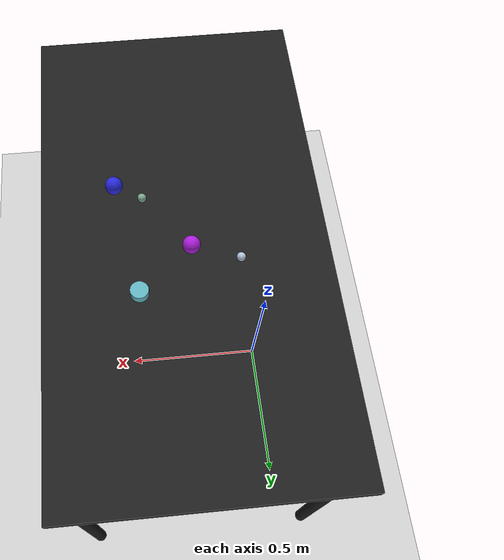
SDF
<?xml version="1.0" ?>
<sdf version="1.6">
  <world name="arm_world">
    <plugin filename="gz-sim-physics-system" name="gz::sim::systems::Physics">
      <engine>
        <filename>libgz-physics-bullet-featherstone-plugin.so</filename>
      </engine>
    </plugin>
    <plugin filename="gz-sim-user-commands-system" name="gz::sim::systems::UserCommands"/>
    <plugin filename="gz-sim-scene-broadcaster-system" name="gz::sim::systems::SceneBroadcaster"/>
    <plugin filename="gz-sim-sensors-system" name="gz::sim::systems::Sensors">
      <render_engine>ogre2</render_engine>
    </plugin>
    <gravity>0.0 0.0 -9.8</gravity>
    <scene>
      <shadows>false</shadows>
    </scene>
    <gui>
      <camera name="user_camera">
        <pose>0.75 -0.75 1.4 0 0.29 2.21</pose>
      </camera>
    </gui>
    <include>
      <uri>https://fuel.gazebosim.org/1.0/OpenRobotics/models/Sun</uri>
    </include>
    <model name="table">
      <static>true</static>
      <include>
        <uri>model://table</uri>
      </include>
      <pose>0.29 0 0 0 0 1.5708</pose>
    </model>
    <model name="ground_plane">
      <static>true</static>
      <link name="link">
        <collision name="collision">
          <geometry>
            <plane>
              <normal>0 0 1</normal>
            </plane>
          </geometry>
          <surface>
            <friction>
              <ode>
                <mu>1.0</mu>
                <mu2>1.0</mu2>
              </ode>
            </friction>
          </surface>
        </collision>
        <visual name="visual">
          <geometry>
            <plane>
              <normal>0 0 1</normal>
              <size>100 100</size>
            </plane>
          </geometry>
          <material>
            <ambient>0.8 0.8 0.8 1</ambient>
            <diffuse>0.8 0.8 0.8 1</diffuse>
            <specular>0.8 0.8 0.8 1</specular>
          </material>
        </visual>
      </link>
    </model>
    <model name="sphere_m_0">
      <pose>0.477 -0.152 1.05 0 0 2.7</pose>
      <link name="sphere_m_0_link">
        <collision name="sphere_m_0_collision">
          <geometry>
            <sphere>
              <radius>0.025</radius>
            </sphere>
          </geometry>
        </collision>
        <visual name="sphere_m_0_visual">
          <geometry>
            <sphere>
              <radius>0.025</radius>
            </sphere>
          </geometry>
          <material>
            <ambient>0.16 0.16 0.88 1</ambient>
            <diffuse>0.16 0.16 0.88 1</diffuse>
          </material>
        </visual>
        <velocity_decay>
          <linear>1</linear>
          <angular>1</angular>
        </velocity_decay>
      </link>
    </model>
    <model name="sphere_m_1">
      <pose>0.276 0.061 1.05 0 0 2.49</pose>
      <link name="sphere_m_1_link">
        <collision name="sphere_m_1_collision">
          <geometry>
            <sphere>
              <radius>0.025</radius>
            </sphere>
          </geometry>
        </collision>
        <visual name="sphere_m_1_visual">
          <geometry>
            <sphere>
              <radius>0.025</radius>
            </sphere>
          </geometry>
          <material>
            <ambient>0.68 0.11 0.86 1</ambient>
            <diffuse>0.68 0.11 0.86 1</diffuse>
          </material>
        </visual>
        <velocity_decay>
          <linear>1</linear>
          <angular>1</angular>
        </velocity_decay>
      </link>
    </model>
    <model name="sphere_s_2">
      <pose>0.4 -0.103 1.05 0 0 2.79</pose>
      <link name="sphere_s_2_link">
        <collision name="sphere_s_2_collision">
          <geometry>
            <sphere>
              <radius>0.0125</radius>
            </sphere>
          </geometry>
        </collision>
        <visual name="sphere_s_2_visual">
          <geometry>
            <sphere>
              <radius>0.0125</radius>
            </sphere>
          </geometry>
          <material>
            <ambient>0.5 0.68 0.57 1</ambient>
            <diffuse>0.5 0.68 0.57 1</diffuse>
          </material>
        </visual>
        <velocity_decay>
          <linear>1</linear>
          <angular>1</angular>
        </velocity_decay>
      </link>
    </model>
    <model name="cylinder_m_3">
      <pose>0.426 0.19 1.05 0 0 5.97</pose>
      <link name="cylinder_m_3_link">
        <collision name="cylinder_m_3_collision">
          <geometry>
            <cylinder>
              <radius>0.025</radius>
              <length>0.025</length>
            </cylinder>
          </geometry>
        </collision>
        <visual name="cylinder_m_3_visual">
          <geometry>
            <cylinder>
              <radius>0.025</radius>
              <length>0.025</length>
            </cylinder>
          </geometry>
          <material>
            <ambient>0.38 0.7 0.75 1</ambient>
            <diffuse>0.38 0.7 0.75 1</diffuse>
          </material>
        </visual>
        <velocity_decay>
          <linear>1</linear>
          <angular>1</angular>
        </velocity_decay>
      </link>
    </model>
    <model name="sphere_s_4">
      <pose>0.146 0.111 1.05 0 0 5.04</pose>
      <link name="sphere_s_4_link">
        <collision name="sphere_s_4_collision">
          <geometry>
            <sphere>
              <radius>0.0125</radius>
            </sphere>
          </geometry>
        </collision>
        <visual name="sphere_s_4_visual">
          <geometry>
            <sphere>
              <radius>0.0125</radius>
            </sphere>
          </geometry>
          <material>
            <ambient>0.71 0.78 0.86 1</ambient>
            <diffuse>0.71 0.78 0.86 1</diffuse>
          </material>
        </visual>
        <velocity_decay>
          <linear>1</linear>
          <angular>1</angular>
        </velocity_decay>
      </link>
    </model>
  </world>
</sdf>

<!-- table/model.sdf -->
<sdf version="1.5">
  <model name="table">
    <static>true</static>
    <link name="link">
      <collision name="surface">
        <pose>0 0 1.0 0 0 0</pose>
        <geometry>
          <box>
            <size>1.5 0.8 0.03</size>
          </box>
        </geometry>
        <surface>
          <friction>
            <ode>
              <mu>0.6</mu>
              <mu2>0.6</mu2>
            </ode>
          </friction>
        </surface>
      </collision>
      <visual name="surface">
        <pose>0 0 1.0 0 0 0</pose>
        <geometry>
          <box>
            <size>1.5 0.8 0.03</size>
          </box>
        </geometry>
        <material>
          <script>
            <uri>file://media/materials/scripts/gazebo.material</uri>
            <name>Gazebo/Black</name>
          </script>
        </material>
      </visual>
      <collision name="front_left_leg">
        <pose>0.68 0.38 0.5 0 0 0</pose>
        <geometry>
          <cylinder>
            <radius>0.02</radius>
            <length>1.0</length>
          </cylinder>
        </geometry>
      </collision>
      <visual name="front_left_leg">
        <pose>0.68 0.38 0.5 0 0 0</pose>
        <geometry>
          <cylinder>
            <radius>0.02</radius>
            <length>1.0</length>
          </cylinder>
        </geometry>
        <material>
          <script>
            <uri>file://media/materials/scripts/gazebo.material</uri>
            <name>Gazebo/Black</name>
          </script>
        </material>
      </visual>
      <collision name="front_right_leg">
        <pose>0.68 -0.38 0.5 0 0 0</pose>
        <geometry>
          <cylinder>
            <radius>0.02</radius>
            <length>1.0</length>
          </cylinder>
        </geometry>
      </collision>
      <visual name="front_right_leg">
        <pose>0.68 -0.38 0.5 0 0 0</pose>
        <geometry>
          <cylinder>
            <radius>0.02</radius>
            <length>1.0</length>
          </cylinder>
        </geometry>
        <material>
          <script>
            <uri>file://media/materials/scripts/gazebo.material</uri>
            <name>Gazebo/Black</name>
          </script>
        </material>
      </visual>
      <collision name="back_right_leg">
        <pose>-0.68 -0.38 0.5 0 0 0</pose>
        <geometry>
          <cylinder>
            <radius>0.02</radius>
            <length>1.0</length>
          </cylinder>
        </geometry>
      </collision>
      <visual name="back_right_leg">
        <pose>-0.68 -0.38 0.5 0 0 0</pose>
        <geometry>
          <cylinder>
            <radius>0.02</radius>
            <length>1.0</length>
          </cylinder>
        </geometry>
        <material>
          <script>
            <uri>file://media/materials/scripts/gazebo.material</uri>
            <name>Gazebo/Black</name>
          </script>
        </material>
      </visual>
      <collision name="back_left_leg">
        <pose>-0.68 0.38 0.5 0 0 0</pose>
        <geometry>
          <cylinder>
            <radius>0.02</radius>
            <length>1.0</length>
          </cylinder>
        </geometry>
      </collision>
      <visual name="back_left_leg">
        <pose>-0.68 0.38 0.5 0 0 0</pose>
        <geometry>
          <cylinder>
            <radius>0.02</radius>
            <length>1.0</length>
          </cylinder>
        </geometry>
        <material>
          <script>
            <uri>file://media/materials/scripts/gazebo.material</uri>
            <name>Gazebo/Black</name>
          </script>
        </material>
      </visual>
    </link>
  </model>
</sdf>
